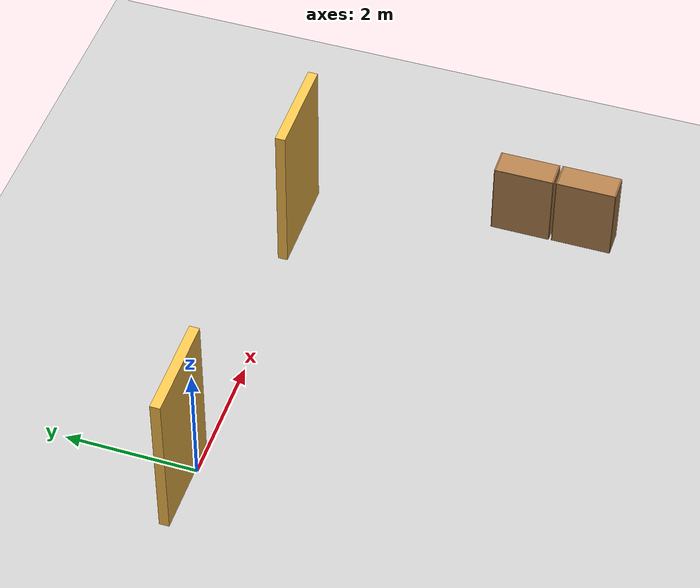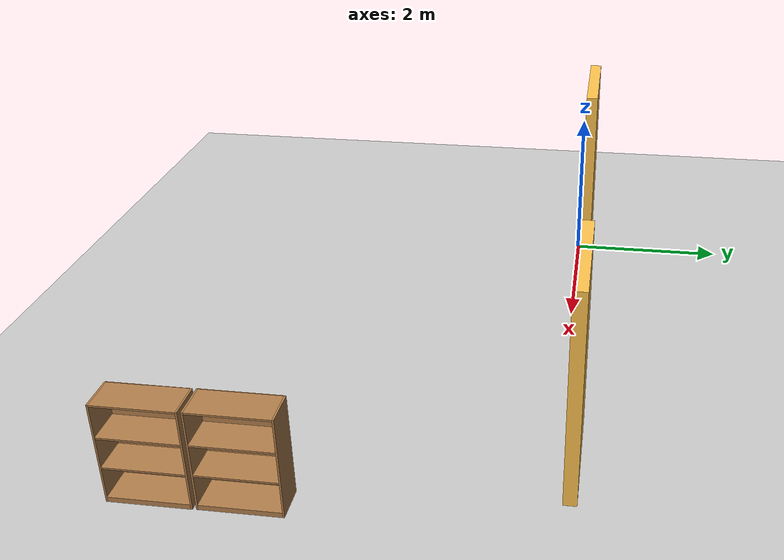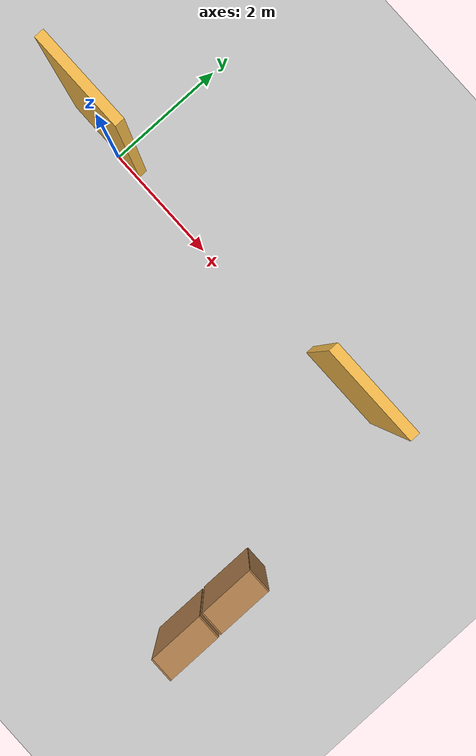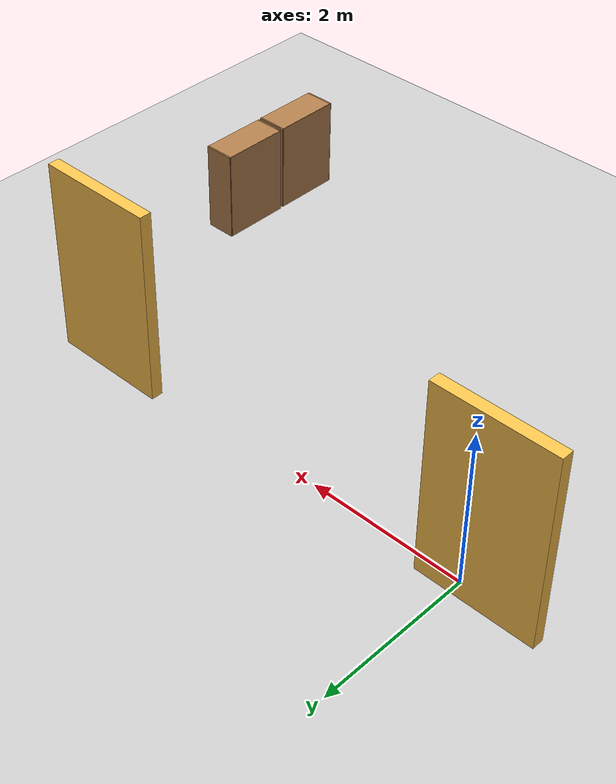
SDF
<sdf version="1.6">
 <world name="default">
  <model name="ground_plane">
   <static>1</static>
   <link name="link">
    <collision name="collision">
     <geometry><plane><normal>0 0 1</normal><size>100 100</size></plane></geometry>
     <surface>
      <contact><collide_bitmask>65535</collide_bitmask></contact>
      <friction><ode><mu>100</mu><mu2>50</mu2></ode></friction>
     </surface>
    </collision>
    <visual name="visual">
     <cast_shadows>0</cast_shadows>
     <geometry><plane><normal>0 0 1</normal><size>100 100</size></plane></geometry>
     <material>
      <script><uri>file://media/materials/scripts/gazebo.material</uri><name>Gazebo/Grey</name></script>
     </material>
    </visual>
   </link>
  </model>
  <model name="model-03">
   <pose>2.36951 0.15153 0 0 -0 0</pose>
   <link name="Wall_83">
    <collision name="Wall_83_Collision">
     <geometry><box><size>1.5 0.15 2.5</size></box></geometry>
     <pose>0 0 1.25 0 -0 0</pose>
    </collision>
    <visual name="Wall_83_Visual">
     <pose>0 0 1.25 0 -0 0</pose>
     <geometry><box><size>1.5 0.15 2.5</size></box></geometry>
     <material>
      <script><uri>file://media/materials/scripts/gazebo.material</uri><name>Gazebo/Grey</name></script>
      <ambient>1 0.764706 0.305882 1</ambient>
     </material>
     <meta><layer>0</layer></meta>
    </visual>
    <pose>-2.6608 -0.049649 0 0 -0 3.14159</pose>
   </link>
   <link name="Wall_85">
    <collision name="Wall_85_Collision">
     <geometry><box><size>1.5 0.15 2.5</size></box></geometry>
     <pose>0 0 1.25 0 -0 0</pose>
    </collision>
    <visual name="Wall_85_Visual">
     <pose>0 0 1.25 0 -0 0</pose>
     <geometry><box><size>1.5 0.15 2.5</size></box></geometry>
     <material>
      <script><uri>file://media/materials/scripts/gazebo.material</uri><name>Gazebo/Grey</name></script>
      <ambient>1 0.764706 0.305882 1</ambient>
     </material>
     <meta><layer>0</layer></meta>
    </visual>
    <pose>2.6608 0.049649 0 0 -0 0</pose>
   </link>
   <static>1</static>
  </model>
  <model name="bookshelf_clone_0">
   <static>1</static>
   <link name="link">
    <inertial><mass>1</mass></inertial>
    <collision name="back">
     <pose>0 0.005 0.6 0 -0 0</pose>
     <geometry><box><size>0.9 0.01 1.2</size></box></geometry>
    </collision>
    <visual name="visual1">
     <pose>0 0.005 0.6 0 -0 0</pose>
     <geometry><box><size>0.9 0.01 1.2</size></box></geometry>
     <material>
      <script><uri>file://media/materials/scripts/gazebo.material</uri><name>Gazebo/Wood</name></script>
     </material>
    </visual>
    <collision name="left_side">
     <pose>0.45 -0.195 0.6 0 -0 0</pose>
     <geometry><box><size>0.02 0.4 1.2</size></box></geometry>
    </collision>
    <visual name="visual2">
     <pose>0.45 -0.195 0.6 0 -0 0</pose>
     <geometry><box><size>0.02 0.4 1.2</size></box></geometry>
     <material>
      <script><uri>file://media/materials/scripts/gazebo.material</uri><name>Gazebo/Wood</name></script>
     </material>
    </visual>
    <collision name="right_side">
     <pose>-0.45 -0.195 0.6 0 -0 0</pose>
     <geometry><box><size>0.02 0.4 1.2</size></box></geometry>
    </collision>
    <visual name="visual3">
     <pose>-0.45 -0.195 0.6 0 -0 0</pose>
     <geometry><box><size>0.02 0.4 1.2</size></box></geometry>
     <material>
      <script><uri>file://media/materials/scripts/gazebo.material</uri><name>Gazebo/Wood</name></script>
     </material>
    </visual>
    <collision name="bottom">
     <pose>0 -0.195 0.03 0 -0 0</pose>
     <geometry><box><size>0.88 0.4 0.06</size></box></geometry>
    </collision>
    <visual name="visual4">
     <pose>0 -0.195 0.03 0 -0 0</pose>
     <geometry><box><size>0.88 0.4 0.06</size></box></geometry>
     <material>
      <script><uri>file://media/materials/scripts/gazebo.material</uri><name>Gazebo/Wood</name></script>
     </material>
    </visual>
    <collision name="top">
     <pose>0 -0.195 1.19 0 -0 0</pose>
     <geometry><box><size>0.88 0.4 0.02</size></box></geometry>
    </collision>
    <visual name="visual5">
     <pose>0 -0.195 1.19 0 -0 0</pose>
     <geometry><box><size>0.88 0.4 0.02</size></box></geometry>
     <material>
      <script><uri>file://media/materials/scripts/gazebo.material</uri><name>Gazebo/Wood</name></script>
     </material>
    </visual>
    <collision name="low_shelf">
     <pose>0 -0.195 0.43 0 -0 0</pose>
     <geometry><box><size>0.88 0.4 0.02</size></box></geometry>
    </collision>
    <visual name="visual6">
     <pose>0 -0.195 0.43 0 -0 0</pose>
     <geometry><box><size>0.88 0.4 0.02</size></box></geometry>
     <material>
      <script><uri>file://media/materials/scripts/gazebo.material</uri><name>Gazebo/Wood</name></script>
     </material>
    </visual>
    <collision name="high_shelf">
     <pose>0 -0.195 0.8 0 -0 0</pose>
     <geometry><box><size>0.88 0.4 0.02</size></box></geometry>
    </collision>
    <visual name="visual7">
     <pose>0 -0.195 0.8 0 -0 0</pose>
     <geometry><box><size>0.88 0.4 0.02</size></box></geometry>
     <material>
      <script><uri>file://media/materials/scripts/gazebo.material</uri><name>Gazebo/Wood</name></script>
     </material>
    </visual>
   </link>
   <pose>5.94427 -4.02578 0 0 -0 1.5708</pose>
  </model>
  <model name="bookshelf_clone_1">
   <static>1</static>
   <link name="link">
    <inertial><mass>1</mass></inertial>
    <collision name="back">
     <pose>0 0.005 0.6 0 -0 0</pose>
     <geometry><box><size>0.9 0.01 1.2</size></box></geometry>
    </collision>
    <visual name="visual1">
     <pose>0 0.005 0.6 0 -0 0</pose>
     <geometry><box><size>0.9 0.01 1.2</size></box></geometry>
     <material>
      <script><uri>file://media/materials/scripts/gazebo.material</uri><name>Gazebo/Wood</name></script>
     </material>
    </visual>
    <collision name="left_side">
     <pose>0.45 -0.195 0.6 0 -0 0</pose>
     <geometry><box><size>0.02 0.4 1.2</size></box></geometry>
    </collision>
    <visual name="visual2">
     <pose>0.45 -0.195 0.6 0 -0 0</pose>
     <geometry><box><size>0.02 0.4 1.2</size></box></geometry>
     <material>
      <script><uri>file://media/materials/scripts/gazebo.material</uri><name>Gazebo/Wood</name></script>
     </material>
    </visual>
    <collision name="right_side">
     <pose>-0.45 -0.195 0.6 0 -0 0</pose>
     <geometry><box><size>0.02 0.4 1.2</size></box></geometry>
    </collision>
    <visual name="visual3">
     <pose>-0.45 -0.195 0.6 0 -0 0</pose>
     <geometry><box><size>0.02 0.4 1.2</size></box></geometry>
     <material>
      <script><uri>file://media/materials/scripts/gazebo.material</uri><name>Gazebo/Wood</name></script>
     </material>
    </visual>
    <collision name="bottom">
     <pose>0 -0.195 0.03 0 -0 0</pose>
     <geometry><box><size>0.88 0.4 0.06</size></box></geometry>
    </collision>
    <visual name="visual4">
     <pose>0 -0.195 0.03 0 -0 0</pose>
     <geometry><box><size>0.88 0.4 0.06</size></box></geometry>
     <material>
      <script><uri>file://media/materials/scripts/gazebo.material</uri><name>Gazebo/Wood</name></script>
     </material>
    </visual>
    <collision name="top">
     <pose>0 -0.195 1.19 0 -0 0</pose>
     <geometry><box><size>0.88 0.4 0.02</size></box></geometry>
    </collision>
    <visual name="visual5">
     <pose>0 -0.195 1.19 0 -0 0</pose>
     <geometry><box><size>0.88 0.4 0.02</size></box></geometry>
     <material>
      <script><uri>file://media/materials/scripts/gazebo.material</uri><name>Gazebo/Wood</name></script>
     </material>
    </visual>
    <collision name="low_shelf">
     <pose>0 -0.195 0.43 0 -0 0</pose>
     <geometry><box><size>0.88 0.4 0.02</size></box></geometry>
    </collision>
    <visual name="visual6">
     <pose>0 -0.195 0.43 0 -0 0</pose>
     <geometry><box><size>0.88 0.4 0.02</size></box></geometry>
     <material>
      <script><uri>file://media/materials/scripts/gazebo.material</uri><name>Gazebo/Wood</name></script>
     </material>
    </visual>
    <collision name="high_shelf">
     <pose>0 -0.195 0.8 0 -0 0</pose>
     <geometry><box><size>0.88 0.4 0.02</size></box></geometry>
    </collision>
    <visual name="visual7">
     <pose>0 -0.195 0.8 0 -0 0</pose>
     <geometry><box><size>0.88 0.4 0.02</size></box></geometry>
     <material>
      <script><uri>file://media/materials/scripts/gazebo.material</uri><name>Gazebo/Wood</name></script>
     </material>
    </visual>
   </link>
   <pose>5.93869 -3.06933 0 0 -0 1.5708</pose>
  </model>
 </world>
</sdf>
